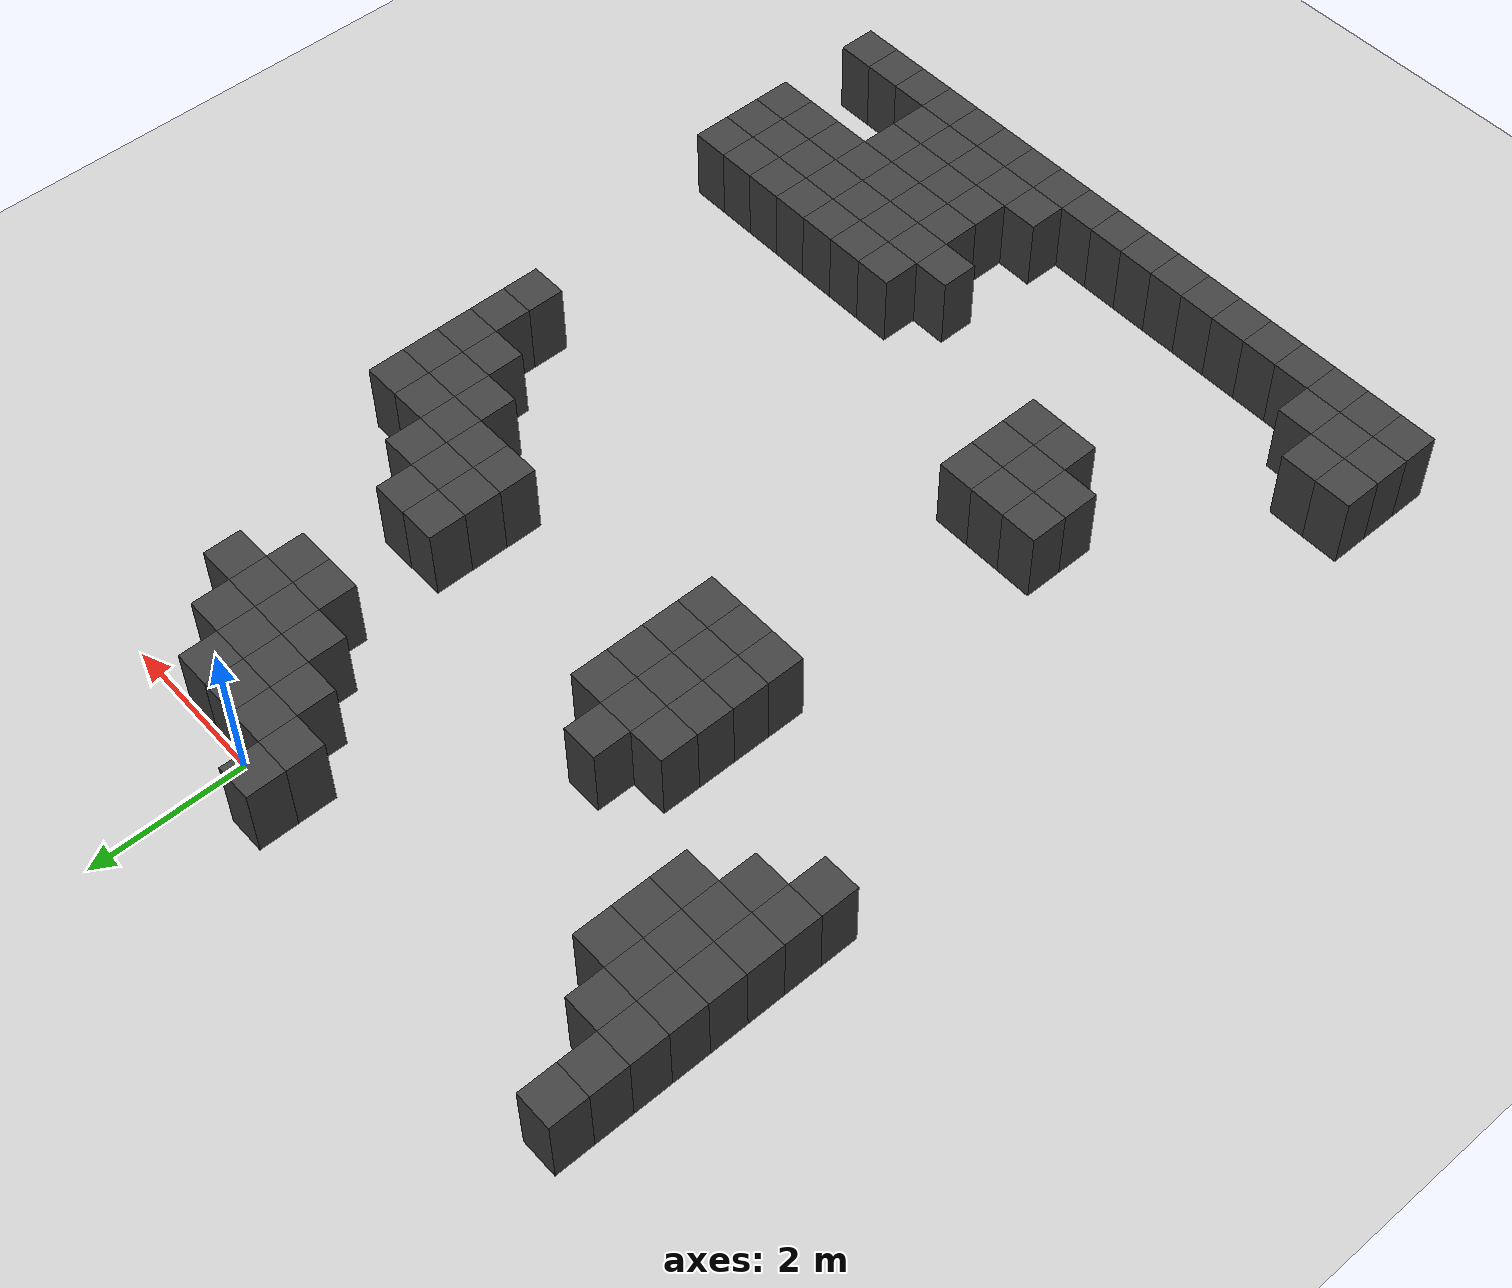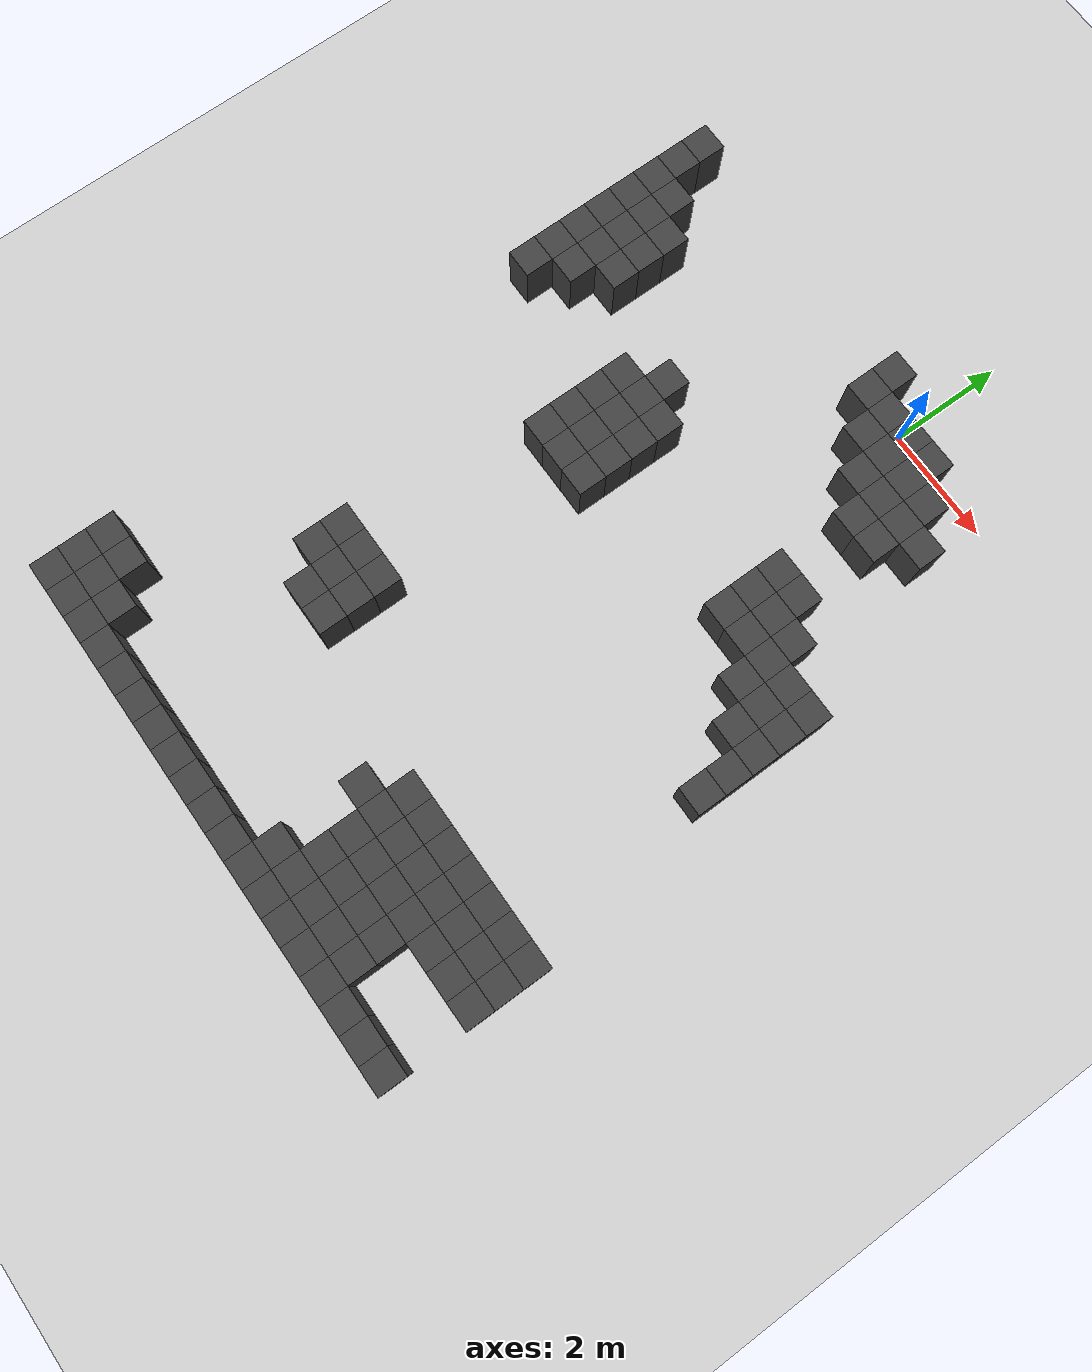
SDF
<sdf version="1.7">
 <world name="map_9082">
  <model name="ground_plane">
   <static>true</static>
   <link name="link">
    <collision name="collision">
     <geometry><plane><normal>0 0 1</normal><size>200 200</size></plane></geometry>
    </collision>
    <visual name="visual">
     <geometry><plane><normal>0 0 1</normal><size>200 200</size></plane></geometry>
     <material><ambient>0.8 0.8 0.8 1</ambient><diffuse>0.8 0.8 0.8 1</diffuse></material>
    </visual>
   </link>
  </model>
  <model name="maze_environment">
   <static>true</static>
   <link name="wall_436">
    <pose>-5.750 0.250 0.500 0 0 0</pose>
    <collision name="col"><geometry><box><size>0.5 0.5 1.0</size></box></geometry></collision>
    <visual name="vis">
     <geometry><box><size>0.5 0.5 1.0</size></box></geometry>
     <material><ambient>0.15 0.15 0.15 1</ambient><diffuse>0.25 0.25 0.25 1</diffuse></material>
    </visual>
   </link>
   <link name="wall_437">
    <pose>-0.750 0.250 0.500 0 0 0</pose>
    <collision name="col"><geometry><box><size>0.5 0.5 1.0</size></box></geometry></collision>
    <visual name="vis">
     <geometry><box><size>0.5 0.5 1.0</size></box></geometry>
     <material><ambient>0.15 0.15 0.15 1</ambient><diffuse>0.25 0.25 0.25 1</diffuse></material>
    </visual>
   </link>
   <link name="wall_450">
    <pose>-5.750 -0.250 0.500 0 0 0</pose>
    <collision name="col"><geometry><box><size>0.5 0.5 1.0</size></box></geometry></collision>
    <visual name="vis">
     <geometry><box><size>0.5 0.5 1.0</size></box></geometry>
     <material><ambient>0.15 0.15 0.15 1</ambient><diffuse>0.25 0.25 0.25 1</diffuse></material>
    </visual>
   </link>
   <link name="wall_451">
    <pose>-0.750 -0.250 0.500 0 0 0</pose>
    <collision name="col"><geometry><box><size>0.5 0.5 1.0</size></box></geometry></collision>
    <visual name="vis">
     <geometry><box><size>0.5 0.5 1.0</size></box></geometry>
     <material><ambient>0.15 0.15 0.15 1</ambient><diffuse>0.25 0.25 0.25 1</diffuse></material>
    </visual>
   </link>
   <link name="wall_452">
    <pose>-0.250 -0.250 0.500 0 0 0</pose>
    <collision name="col"><geometry><box><size>0.5 0.5 1.0</size></box></geometry></collision>
    <visual name="vis">
     <geometry><box><size>0.5 0.5 1.0</size></box></geometry>
     <material><ambient>0.15 0.15 0.15 1</ambient><diffuse>0.25 0.25 0.25 1</diffuse></material>
    </visual>
   </link>
   <link name="wall_453">
    <pose>0.250 -0.250 0.500 0 0 0</pose>
    <collision name="col"><geometry><box><size>0.5 0.5 1.0</size></box></geometry></collision>
    <visual name="vis">
     <geometry><box><size>0.5 0.5 1.0</size></box></geometry>
     <material><ambient>0.15 0.15 0.15 1</ambient><diffuse>0.25 0.25 0.25 1</diffuse></material>
    </visual>
   </link>
   <link name="wall_454">
    <pose>0.750 -0.250 0.500 0 0 0</pose>
    <collision name="col"><geometry><box><size>0.5 0.5 1.0</size></box></geometry></collision>
    <visual name="vis">
     <geometry><box><size>0.5 0.5 1.0</size></box></geometry>
     <material><ambient>0.15 0.15 0.15 1</ambient><diffuse>0.25 0.25 0.25 1</diffuse></material>
    </visual>
   </link>
   <link name="wall_465">
    <pose>-5.750 -0.750 0.500 0 0 0</pose>
    <collision name="col"><geometry><box><size>0.5 0.5 1.0</size></box></geometry></collision>
    <visual name="vis">
     <geometry><box><size>0.5 0.5 1.0</size></box></geometry>
     <material><ambient>0.15 0.15 0.15 1</ambient><diffuse>0.25 0.25 0.25 1</diffuse></material>
    </visual>
   </link>
   <link name="wall_466">
    <pose>-5.250 -0.750 0.500 0 0 0</pose>
    <collision name="col"><geometry><box><size>0.5 0.5 1.0</size></box></geometry></collision>
    <visual name="vis">
     <geometry><box><size>0.5 0.5 1.0</size></box></geometry>
     <material><ambient>0.15 0.15 0.15 1</ambient><diffuse>0.25 0.25 0.25 1</diffuse></material>
    </visual>
   </link>
   <link name="wall_467">
    <pose>-0.250 -0.750 0.500 0 0 0</pose>
    <collision name="col"><geometry><box><size>0.5 0.5 1.0</size></box></geometry></collision>
    <visual name="vis">
     <geometry><box><size>0.5 0.5 1.0</size></box></geometry>
     <material><ambient>0.15 0.15 0.15 1</ambient><diffuse>0.25 0.25 0.25 1</diffuse></material>
    </visual>
   </link>
   <link name="wall_468">
    <pose>0.250 -0.750 0.500 0 0 0</pose>
    <collision name="col"><geometry><box><size>0.5 0.5 1.0</size></box></geometry></collision>
    <visual name="vis">
     <geometry><box><size>0.5 0.5 1.0</size></box></geometry>
     <material><ambient>0.15 0.15 0.15 1</ambient><diffuse>0.25 0.25 0.25 1</diffuse></material>
    </visual>
   </link>
   <link name="wall_469">
    <pose>0.750 -0.750 0.500 0 0 0</pose>
    <collision name="col"><geometry><box><size>0.5 0.5 1.0</size></box></geometry></collision>
    <visual name="vis">
     <geometry><box><size>0.5 0.5 1.0</size></box></geometry>
     <material><ambient>0.15 0.15 0.15 1</ambient><diffuse>0.25 0.25 0.25 1</diffuse></material>
    </visual>
   </link>
   <link name="wall_470">
    <pose>1.250 -0.750 0.500 0 0 0</pose>
    <collision name="col"><geometry><box><size>0.5 0.5 1.0</size></box></geometry></collision>
    <visual name="vis">
     <geometry><box><size>0.5 0.5 1.0</size></box></geometry>
     <material><ambient>0.15 0.15 0.15 1</ambient><diffuse>0.25 0.25 0.25 1</diffuse></material>
    </visual>
   </link>
   <link name="wall_482">
    <pose>-5.750 -1.250 0.500 0 0 0</pose>
    <collision name="col"><geometry><box><size>0.5 0.5 1.0</size></box></geometry></collision>
    <visual name="vis">
     <geometry><box><size>0.5 0.5 1.0</size></box></geometry>
     <material><ambient>0.15 0.15 0.15 1</ambient><diffuse>0.25 0.25 0.25 1</diffuse></material>
    </visual>
   </link>
   <link name="wall_483">
    <pose>-5.250 -1.250 0.500 0 0 0</pose>
    <collision name="col"><geometry><box><size>0.5 0.5 1.0</size></box></geometry></collision>
    <visual name="vis">
     <geometry><box><size>0.5 0.5 1.0</size></box></geometry>
     <material><ambient>0.15 0.15 0.15 1</ambient><diffuse>0.25 0.25 0.25 1</diffuse></material>
    </visual>
   </link>
   <link name="wall_484">
    <pose>-4.750 -1.250 0.500 0 0 0</pose>
    <collision name="col"><geometry><box><size>0.5 0.5 1.0</size></box></geometry></collision>
    <visual name="vis">
     <geometry><box><size>0.5 0.5 1.0</size></box></geometry>
     <material><ambient>0.15 0.15 0.15 1</ambient><diffuse>0.25 0.25 0.25 1</diffuse></material>
    </visual>
   </link>
   <link name="wall_485">
    <pose>0.250 -1.250 0.500 0 0 0</pose>
    <collision name="col"><geometry><box><size>0.5 0.5 1.0</size></box></geometry></collision>
    <visual name="vis">
     <geometry><box><size>0.5 0.5 1.0</size></box></geometry>
     <material><ambient>0.15 0.15 0.15 1</ambient><diffuse>0.25 0.25 0.25 1</diffuse></material>
    </visual>
   </link>
   <link name="wall_486">
    <pose>0.750 -1.250 0.500 0 0 0</pose>
    <collision name="col"><geometry><box><size>0.5 0.5 1.0</size></box></geometry></collision>
    <visual name="vis">
     <geometry><box><size>0.5 0.5 1.0</size></box></geometry>
     <material><ambient>0.15 0.15 0.15 1</ambient><diffuse>0.25 0.25 0.25 1</diffuse></material>
    </visual>
   </link>
   <link name="wall_487">
    <pose>1.250 -1.250 0.500 0 0 0</pose>
    <collision name="col"><geometry><box><size>0.5 0.5 1.0</size></box></geometry></collision>
    <visual name="vis">
     <geometry><box><size>0.5 0.5 1.0</size></box></geometry>
     <material><ambient>0.15 0.15 0.15 1</ambient><diffuse>0.25 0.25 0.25 1</diffuse></material>
    </visual>
   </link>
   <link name="wall_488">
    <pose>1.750 -1.250 0.500 0 0 0</pose>
    <collision name="col"><geometry><box><size>0.5 0.5 1.0</size></box></geometry></collision>
    <visual name="vis">
     <geometry><box><size>0.5 0.5 1.0</size></box></geometry>
     <material><ambient>0.15 0.15 0.15 1</ambient><diffuse>0.25 0.25 0.25 1</diffuse></material>
    </visual>
   </link>
   <link name="wall_500">
    <pose>-5.750 -1.750 0.500 0 0 0</pose>
    <collision name="col"><geometry><box><size>0.5 0.5 1.0</size></box></geometry></collision>
    <visual name="vis">
     <geometry><box><size>0.5 0.5 1.0</size></box></geometry>
     <material><ambient>0.15 0.15 0.15 1</ambient><diffuse>0.25 0.25 0.25 1</diffuse></material>
    </visual>
   </link>
   <link name="wall_501">
    <pose>-5.250 -1.750 0.500 0 0 0</pose>
    <collision name="col"><geometry><box><size>0.5 0.5 1.0</size></box></geometry></collision>
    <visual name="vis">
     <geometry><box><size>0.5 0.5 1.0</size></box></geometry>
     <material><ambient>0.15 0.15 0.15 1</ambient><diffuse>0.25 0.25 0.25 1</diffuse></material>
    </visual>
   </link>
   <link name="wall_502">
    <pose>-4.750 -1.750 0.500 0 0 0</pose>
    <collision name="col"><geometry><box><size>0.5 0.5 1.0</size></box></geometry></collision>
    <visual name="vis">
     <geometry><box><size>0.5 0.5 1.0</size></box></geometry>
     <material><ambient>0.15 0.15 0.15 1</ambient><diffuse>0.25 0.25 0.25 1</diffuse></material>
    </visual>
   </link>
   <link name="wall_503">
    <pose>0.750 -1.750 0.500 0 0 0</pose>
    <collision name="col"><geometry><box><size>0.5 0.5 1.0</size></box></geometry></collision>
    <visual name="vis">
     <geometry><box><size>0.5 0.5 1.0</size></box></geometry>
     <material><ambient>0.15 0.15 0.15 1</ambient><diffuse>0.25 0.25 0.25 1</diffuse></material>
    </visual>
   </link>
   <link name="wall_504">
    <pose>1.250 -1.750 0.500 0 0 0</pose>
    <collision name="col"><geometry><box><size>0.5 0.5 1.0</size></box></geometry></collision>
    <visual name="vis">
     <geometry><box><size>0.5 0.5 1.0</size></box></geometry>
     <material><ambient>0.15 0.15 0.15 1</ambient><diffuse>0.25 0.25 0.25 1</diffuse></material>
    </visual>
   </link>
   <link name="wall_519">
    <pose>-5.750 -2.250 0.500 0 0 0</pose>
    <collision name="col"><geometry><box><size>0.5 0.5 1.0</size></box></geometry></collision>
    <visual name="vis">
     <geometry><box><size>0.5 0.5 1.0</size></box></geometry>
     <material><ambient>0.15 0.15 0.15 1</ambient><diffuse>0.25 0.25 0.25 1</diffuse></material>
    </visual>
   </link>
   <link name="wall_520">
    <pose>-5.250 -2.250 0.500 0 0 0</pose>
    <collision name="col"><geometry><box><size>0.5 0.5 1.0</size></box></geometry></collision>
    <visual name="vis">
     <geometry><box><size>0.5 0.5 1.0</size></box></geometry>
     <material><ambient>0.15 0.15 0.15 1</ambient><diffuse>0.25 0.25 0.25 1</diffuse></material>
    </visual>
   </link>
   <link name="wall_521">
    <pose>-4.750 -2.250 0.500 0 0 0</pose>
    <collision name="col"><geometry><box><size>0.5 0.5 1.0</size></box></geometry></collision>
    <visual name="vis">
     <geometry><box><size>0.5 0.5 1.0</size></box></geometry>
     <material><ambient>0.15 0.15 0.15 1</ambient><diffuse>0.25 0.25 0.25 1</diffuse></material>
    </visual>
   </link>
   <link name="wall_538">
    <pose>-5.750 -2.750 0.500 0 0 0</pose>
    <collision name="col"><geometry><box><size>0.5 0.5 1.0</size></box></geometry></collision>
    <visual name="vis">
     <geometry><box><size>0.5 0.5 1.0</size></box></geometry>
     <material><ambient>0.15 0.15 0.15 1</ambient><diffuse>0.25 0.25 0.25 1</diffuse></material>
    </visual>
   </link>
   <link name="wall_539">
    <pose>-5.250 -2.750 0.500 0 0 0</pose>
    <collision name="col"><geometry><box><size>0.5 0.5 1.0</size></box></geometry></collision>
    <visual name="vis">
     <geometry><box><size>0.5 0.5 1.0</size></box></geometry>
     <material><ambient>0.15 0.15 0.15 1</ambient><diffuse>0.25 0.25 0.25 1</diffuse></material>
    </visual>
   </link>
   <link name="wall_540">
    <pose>-2.750 -2.750 0.500 0 0 0</pose>
    <collision name="col"><geometry><box><size>0.5 0.5 1.0</size></box></geometry></collision>
    <visual name="vis">
     <geometry><box><size>0.5 0.5 1.0</size></box></geometry>
     <material><ambient>0.15 0.15 0.15 1</ambient><diffuse>0.25 0.25 0.25 1</diffuse></material>
    </visual>
   </link>
   <link name="wall_557">
    <pose>-5.750 -3.250 0.500 0 0 0</pose>
    <collision name="col"><geometry><box><size>0.5 0.5 1.0</size></box></geometry></collision>
    <visual name="vis">
     <geometry><box><size>0.5 0.5 1.0</size></box></geometry>
     <material><ambient>0.15 0.15 0.15 1</ambient><diffuse>0.25 0.25 0.25 1</diffuse></material>
    </visual>
   </link>
   <link name="wall_558">
    <pose>-3.250 -3.250 0.500 0 0 0</pose>
    <collision name="col"><geometry><box><size>0.5 0.5 1.0</size></box></geometry></collision>
    <visual name="vis">
     <geometry><box><size>0.5 0.5 1.0</size></box></geometry>
     <material><ambient>0.15 0.15 0.15 1</ambient><diffuse>0.25 0.25 0.25 1</diffuse></material>
    </visual>
   </link>
   <link name="wall_559">
    <pose>-2.750 -3.250 0.500 0 0 0</pose>
    <collision name="col"><geometry><box><size>0.5 0.5 1.0</size></box></geometry></collision>
    <visual name="vis">
     <geometry><box><size>0.5 0.5 1.0</size></box></geometry>
     <material><ambient>0.15 0.15 0.15 1</ambient><diffuse>0.25 0.25 0.25 1</diffuse></material>
    </visual>
   </link>
   <link name="wall_560">
    <pose>-2.250 -3.250 0.500 0 0 0</pose>
    <collision name="col"><geometry><box><size>0.5 0.5 1.0</size></box></geometry></collision>
    <visual name="vis">
     <geometry><box><size>0.5 0.5 1.0</size></box></geometry>
     <material><ambient>0.15 0.15 0.15 1</ambient><diffuse>0.25 0.25 0.25 1</diffuse></material>
    </visual>
   </link>
   <link name="wall_561">
    <pose>0.750 -3.250 0.500 0 0 0</pose>
    <collision name="col"><geometry><box><size>0.5 0.5 1.0</size></box></geometry></collision>
    <visual name="vis">
     <geometry><box><size>0.5 0.5 1.0</size></box></geometry>
     <material><ambient>0.15 0.15 0.15 1</ambient><diffuse>0.25 0.25 0.25 1</diffuse></material>
    </visual>
   </link>
   <link name="wall_562">
    <pose>1.250 -3.250 0.500 0 0 0</pose>
    <collision name="col"><geometry><box><size>0.5 0.5 1.0</size></box></geometry></collision>
    <visual name="vis">
     <geometry><box><size>0.5 0.5 1.0</size></box></geometry>
     <material><ambient>0.15 0.15 0.15 1</ambient><diffuse>0.25 0.25 0.25 1</diffuse></material>
    </visual>
   </link>
   <link name="wall_575">
    <pose>-3.250 -3.750 0.500 0 0 0</pose>
    <collision name="col"><geometry><box><size>0.5 0.5 1.0</size></box></geometry></collision>
    <visual name="vis">
     <geometry><box><size>0.5 0.5 1.0</size></box></geometry>
     <material><ambient>0.15 0.15 0.15 1</ambient><diffuse>0.25 0.25 0.25 1</diffuse></material>
    </visual>
   </link>
   <link name="wall_576">
    <pose>-2.750 -3.750 0.500 0 0 0</pose>
    <collision name="col"><geometry><box><size>0.5 0.5 1.0</size></box></geometry></collision>
    <visual name="vis">
     <geometry><box><size>0.5 0.5 1.0</size></box></geometry>
     <material><ambient>0.15 0.15 0.15 1</ambient><diffuse>0.25 0.25 0.25 1</diffuse></material>
    </visual>
   </link>
   <link name="wall_577">
    <pose>-2.250 -3.750 0.500 0 0 0</pose>
    <collision name="col"><geometry><box><size>0.5 0.5 1.0</size></box></geometry></collision>
    <visual name="vis">
     <geometry><box><size>0.5 0.5 1.0</size></box></geometry>
     <material><ambient>0.15 0.15 0.15 1</ambient><diffuse>0.25 0.25 0.25 1</diffuse></material>
    </visual>
   </link>
   <link name="wall_578">
    <pose>0.750 -3.750 0.500 0 0 0</pose>
    <collision name="col"><geometry><box><size>0.5 0.5 1.0</size></box></geometry></collision>
    <visual name="vis">
     <geometry><box><size>0.5 0.5 1.0</size></box></geometry>
     <material><ambient>0.15 0.15 0.15 1</ambient><diffuse>0.25 0.25 0.25 1</diffuse></material>
    </visual>
   </link>
   <link name="wall_579">
    <pose>1.250 -3.750 0.500 0 0 0</pose>
    <collision name="col"><geometry><box><size>0.5 0.5 1.0</size></box></geometry></collision>
    <visual name="vis">
     <geometry><box><size>0.5 0.5 1.0</size></box></geometry>
     <material><ambient>0.15 0.15 0.15 1</ambient><diffuse>0.25 0.25 0.25 1</diffuse></material>
    </visual>
   </link>
   <link name="wall_580">
    <pose>1.750 -3.750 0.500 0 0 0</pose>
    <collision name="col"><geometry><box><size>0.5 0.5 1.0</size></box></geometry></collision>
    <visual name="vis">
     <geometry><box><size>0.5 0.5 1.0</size></box></geometry>
     <material><ambient>0.15 0.15 0.15 1</ambient><diffuse>0.25 0.25 0.25 1</diffuse></material>
    </visual>
   </link>
   <link name="wall_591">
    <pose>-3.250 -4.250 0.500 0 0 0</pose>
    <collision name="col"><geometry><box><size>0.5 0.5 1.0</size></box></geometry></collision>
    <visual name="vis">
     <geometry><box><size>0.5 0.5 1.0</size></box></geometry>
     <material><ambient>0.15 0.15 0.15 1</ambient><diffuse>0.25 0.25 0.25 1</diffuse></material>
    </visual>
   </link>
   <link name="wall_592">
    <pose>-2.750 -4.250 0.500 0 0 0</pose>
    <collision name="col"><geometry><box><size>0.5 0.5 1.0</size></box></geometry></collision>
    <visual name="vis">
     <geometry><box><size>0.5 0.5 1.0</size></box></geometry>
     <material><ambient>0.15 0.15 0.15 1</ambient><diffuse>0.25 0.25 0.25 1</diffuse></material>
    </visual>
   </link>
   <link name="wall_593">
    <pose>-2.250 -4.250 0.500 0 0 0</pose>
    <collision name="col"><geometry><box><size>0.5 0.5 1.0</size></box></geometry></collision>
    <visual name="vis">
     <geometry><box><size>0.5 0.5 1.0</size></box></geometry>
     <material><ambient>0.15 0.15 0.15 1</ambient><diffuse>0.25 0.25 0.25 1</diffuse></material>
    </visual>
   </link>
   <link name="wall_594">
    <pose>0.750 -4.250 0.500 0 0 0</pose>
    <collision name="col"><geometry><box><size>0.5 0.5 1.0</size></box></geometry></collision>
    <visual name="vis">
     <geometry><box><size>0.5 0.5 1.0</size></box></geometry>
     <material><ambient>0.15 0.15 0.15 1</ambient><diffuse>0.25 0.25 0.25 1</diffuse></material>
    </visual>
   </link>
   <link name="wall_595">
    <pose>1.250 -4.250 0.500 0 0 0</pose>
    <collision name="col"><geometry><box><size>0.5 0.5 1.0</size></box></geometry></collision>
    <visual name="vis">
     <geometry><box><size>0.5 0.5 1.0</size></box></geometry>
     <material><ambient>0.15 0.15 0.15 1</ambient><diffuse>0.25 0.25 0.25 1</diffuse></material>
    </visual>
   </link>
   <link name="wall_596">
    <pose>1.750 -4.250 0.500 0 0 0</pose>
    <collision name="col"><geometry><box><size>0.5 0.5 1.0</size></box></geometry></collision>
    <visual name="vis">
     <geometry><box><size>0.5 0.5 1.0</size></box></geometry>
     <material><ambient>0.15 0.15 0.15 1</ambient><diffuse>0.25 0.25 0.25 1</diffuse></material>
    </visual>
   </link>
   <link name="wall_597">
    <pose>2.250 -4.250 0.500 0 0 0</pose>
    <collision name="col"><geometry><box><size>0.5 0.5 1.0</size></box></geometry></collision>
    <visual name="vis">
     <geometry><box><size>0.5 0.5 1.0</size></box></geometry>
     <material><ambient>0.15 0.15 0.15 1</ambient><diffuse>0.25 0.25 0.25 1</diffuse></material>
    </visual>
   </link>
   <link name="wall_598">
    <pose>2.750 -4.250 0.500 0 0 0</pose>
    <collision name="col"><geometry><box><size>0.5 0.5 1.0</size></box></geometry></collision>
    <visual name="vis">
     <geometry><box><size>0.5 0.5 1.0</size></box></geometry>
     <material><ambient>0.15 0.15 0.15 1</ambient><diffuse>0.25 0.25 0.25 1</diffuse></material>
    </visual>
   </link>
   <link name="wall_611">
    <pose>-3.250 -4.750 0.500 0 0 0</pose>
    <collision name="col"><geometry><box><size>0.5 0.5 1.0</size></box></geometry></collision>
    <visual name="vis">
     <geometry><box><size>0.5 0.5 1.0</size></box></geometry>
     <material><ambient>0.15 0.15 0.15 1</ambient><diffuse>0.25 0.25 0.25 1</diffuse></material>
    </visual>
   </link>
   <link name="wall_612">
    <pose>-2.750 -4.750 0.500 0 0 0</pose>
    <collision name="col"><geometry><box><size>0.5 0.5 1.0</size></box></geometry></collision>
    <visual name="vis">
     <geometry><box><size>0.5 0.5 1.0</size></box></geometry>
     <material><ambient>0.15 0.15 0.15 1</ambient><diffuse>0.25 0.25 0.25 1</diffuse></material>
    </visual>
   </link>
   <link name="wall_613">
    <pose>-2.250 -4.750 0.500 0 0 0</pose>
    <collision name="col"><geometry><box><size>0.5 0.5 1.0</size></box></geometry></collision>
    <visual name="vis">
     <geometry><box><size>0.5 0.5 1.0</size></box></geometry>
     <material><ambient>0.15 0.15 0.15 1</ambient><diffuse>0.25 0.25 0.25 1</diffuse></material>
    </visual>
   </link>
   <link name="wall_614">
    <pose>1.750 -4.750 0.500 0 0 0</pose>
    <collision name="col"><geometry><box><size>0.5 0.5 1.0</size></box></geometry></collision>
    <visual name="vis">
     <geometry><box><size>0.5 0.5 1.0</size></box></geometry>
     <material><ambient>0.15 0.15 0.15 1</ambient><diffuse>0.25 0.25 0.25 1</diffuse></material>
    </visual>
   </link>
   <link name="wall_615">
    <pose>2.250 -4.750 0.500 0 0 0</pose>
    <collision name="col"><geometry><box><size>0.5 0.5 1.0</size></box></geometry></collision>
    <visual name="vis">
     <geometry><box><size>0.5 0.5 1.0</size></box></geometry>
     <material><ambient>0.15 0.15 0.15 1</ambient><diffuse>0.25 0.25 0.25 1</diffuse></material>
    </visual>
   </link>
   <link name="wall_616">
    <pose>2.750 -4.750 0.500 0 0 0</pose>
    <collision name="col"><geometry><box><size>0.5 0.5 1.0</size></box></geometry></collision>
    <visual name="vis">
     <geometry><box><size>0.5 0.5 1.0</size></box></geometry>
     <material><ambient>0.15 0.15 0.15 1</ambient><diffuse>0.25 0.25 0.25 1</diffuse></material>
    </visual>
   </link>
   <link name="wall_626">
    <pose>2.250 -5.250 0.500 0 0 0</pose>
    <collision name="col"><geometry><box><size>0.5 0.5 1.0</size></box></geometry></collision>
    <visual name="vis">
     <geometry><box><size>0.5 0.5 1.0</size></box></geometry>
     <material><ambient>0.15 0.15 0.15 1</ambient><diffuse>0.25 0.25 0.25 1</diffuse></material>
    </visual>
   </link>
   <link name="wall_627">
    <pose>2.750 -5.250 0.500 0 0 0</pose>
    <collision name="col"><geometry><box><size>0.5 0.5 1.0</size></box></geometry></collision>
    <visual name="vis">
     <geometry><box><size>0.5 0.5 1.0</size></box></geometry>
     <material><ambient>0.15 0.15 0.15 1</ambient><diffuse>0.25 0.25 0.25 1</diffuse></material>
    </visual>
   </link>
   <link name="wall_637">
    <pose>2.750 -5.750 0.500 0 0 0</pose>
    <collision name="col"><geometry><box><size>0.5 0.5 1.0</size></box></geometry></collision>
    <visual name="vis">
     <geometry><box><size>0.5 0.5 1.0</size></box></geometry>
     <material><ambient>0.15 0.15 0.15 1</ambient><diffuse>0.25 0.25 0.25 1</diffuse></material>
    </visual>
   </link>
   <link name="wall_645">
    <pose>2.750 -6.250 0.500 0 0 0</pose>
    <collision name="col"><geometry><box><size>0.5 0.5 1.0</size></box></geometry></collision>
    <visual name="vis">
     <geometry><box><size>0.5 0.5 1.0</size></box></geometry>
     <material><ambient>0.15 0.15 0.15 1</ambient><diffuse>0.25 0.25 0.25 1</diffuse></material>
    </visual>
   </link>
   <link name="wall_698">
    <pose>-3.750 -8.250 0.500 0 0 0</pose>
    <collision name="col"><geometry><box><size>0.5 0.5 1.0</size></box></geometry></collision>
    <visual name="vis">
     <geometry><box><size>0.5 0.5 1.0</size></box></geometry>
     <material><ambient>0.15 0.15 0.15 1</ambient><diffuse>0.25 0.25 0.25 1</diffuse></material>
    </visual>
   </link>
   <link name="wall_699">
    <pose>-3.250 -8.250 0.500 0 0 0</pose>
    <collision name="col"><geometry><box><size>0.5 0.5 1.0</size></box></geometry></collision>
    <visual name="vis">
     <geometry><box><size>0.5 0.5 1.0</size></box></geometry>
     <material><ambient>0.15 0.15 0.15 1</ambient><diffuse>0.25 0.25 0.25 1</diffuse></material>
    </visual>
   </link>
   <link name="wall_700">
    <pose>-2.750 -8.250 0.500 0 0 0</pose>
    <collision name="col"><geometry><box><size>0.5 0.5 1.0</size></box></geometry></collision>
    <visual name="vis">
     <geometry><box><size>0.5 0.5 1.0</size></box></geometry>
     <material><ambient>0.15 0.15 0.15 1</ambient><diffuse>0.25 0.25 0.25 1</diffuse></material>
    </visual>
   </link>
   <link name="wall_713">
    <pose>-3.750 -8.750 0.500 0 0 0</pose>
    <collision name="col"><geometry><box><size>0.5 0.5 1.0</size></box></geometry></collision>
    <visual name="vis">
     <geometry><box><size>0.5 0.5 1.0</size></box></geometry>
     <material><ambient>0.15 0.15 0.15 1</ambient><diffuse>0.25 0.25 0.25 1</diffuse></material>
    </visual>
   </link>
   <link name="wall_714">
    <pose>-3.250 -8.750 0.500 0 0 0</pose>
    <collision name="col"><geometry><box><size>0.5 0.5 1.0</size></box></geometry></collision>
    <visual name="vis">
     <geometry><box><size>0.5 0.5 1.0</size></box></geometry>
     <material><ambient>0.15 0.15 0.15 1</ambient><diffuse>0.25 0.25 0.25 1</diffuse></material>
    </visual>
   </link>
   <link name="wall_715">
    <pose>-2.750 -8.750 0.500 0 0 0</pose>
    <collision name="col"><geometry><box><size>0.5 0.5 1.0</size></box></geometry></collision>
    <visual name="vis">
     <geometry><box><size>0.5 0.5 1.0</size></box></geometry>
     <material><ambient>0.15 0.15 0.15 1</ambient><diffuse>0.25 0.25 0.25 1</diffuse></material>
    </visual>
   </link>
   <link name="wall_724">
    <pose>-3.250 -9.250 0.500 0 0 0</pose>
    <collision name="col"><geometry><box><size>0.5 0.5 1.0</size></box></geometry></collision>
    <visual name="vis">
     <geometry><box><size>0.5 0.5 1.0</size></box></geometry>
     <material><ambient>0.15 0.15 0.15 1</ambient><diffuse>0.25 0.25 0.25 1</diffuse></material>
    </visual>
   </link>
   <link name="wall_725">
    <pose>-2.750 -9.250 0.500 0 0 0</pose>
    <collision name="col"><geometry><box><size>0.5 0.5 1.0</size></box></geometry></collision>
    <visual name="vis">
     <geometry><box><size>0.5 0.5 1.0</size></box></geometry>
     <material><ambient>0.15 0.15 0.15 1</ambient><diffuse>0.25 0.25 0.25 1</diffuse></material>
    </visual>
   </link>
   <link name="wall_735">
    <pose>0.250 -9.750 0.500 0 0 0</pose>
    <collision name="col"><geometry><box><size>0.5 0.5 1.0</size></box></geometry></collision>
    <visual name="vis">
     <geometry><box><size>0.5 0.5 1.0</size></box></geometry>
     <material><ambient>0.15 0.15 0.15 1</ambient><diffuse>0.25 0.25 0.25 1</diffuse></material>
    </visual>
   </link>
   <link name="wall_736">
    <pose>0.750 -9.750 0.500 0 0 0</pose>
    <collision name="col"><geometry><box><size>0.5 0.5 1.0</size></box></geometry></collision>
    <visual name="vis">
     <geometry><box><size>0.5 0.5 1.0</size></box></geometry>
     <material><ambient>0.15 0.15 0.15 1</ambient><diffuse>0.25 0.25 0.25 1</diffuse></material>
    </visual>
   </link>
   <link name="wall_737">
    <pose>1.250 -9.750 0.500 0 0 0</pose>
    <collision name="col"><geometry><box><size>0.5 0.5 1.0</size></box></geometry></collision>
    <visual name="vis">
     <geometry><box><size>0.5 0.5 1.0</size></box></geometry>
     <material><ambient>0.15 0.15 0.15 1</ambient><diffuse>0.25 0.25 0.25 1</diffuse></material>
    </visual>
   </link>
   <link name="wall_738">
    <pose>1.750 -9.750 0.500 0 0 0</pose>
    <collision name="col"><geometry><box><size>0.5 0.5 1.0</size></box></geometry></collision>
    <visual name="vis">
     <geometry><box><size>0.5 0.5 1.0</size></box></geometry>
     <material><ambient>0.15 0.15 0.15 1</ambient><diffuse>0.25 0.25 0.25 1</diffuse></material>
    </visual>
   </link>
   <link name="wall_739">
    <pose>2.250 -9.750 0.500 0 0 0</pose>
    <collision name="col"><geometry><box><size>0.5 0.5 1.0</size></box></geometry></collision>
    <visual name="vis">
     <geometry><box><size>0.5 0.5 1.0</size></box></geometry>
     <material><ambient>0.15 0.15 0.15 1</ambient><diffuse>0.25 0.25 0.25 1</diffuse></material>
    </visual>
   </link>
   <link name="wall_740">
    <pose>2.750 -9.750 0.500 0 0 0</pose>
    <collision name="col"><geometry><box><size>0.5 0.5 1.0</size></box></geometry></collision>
    <visual name="vis">
     <geometry><box><size>0.5 0.5 1.0</size></box></geometry>
     <material><ambient>0.15 0.15 0.15 1</ambient><diffuse>0.25 0.25 0.25 1</diffuse></material>
    </visual>
   </link>
   <link name="wall_741">
    <pose>3.250 -9.750 0.500 0 0 0</pose>
    <collision name="col"><geometry><box><size>0.5 0.5 1.0</size></box></geometry></collision>
    <visual name="vis">
     <geometry><box><size>0.5 0.5 1.0</size></box></geometry>
     <material><ambient>0.15 0.15 0.15 1</ambient><diffuse>0.25 0.25 0.25 1</diffuse></material>
    </visual>
   </link>
   <link name="wall_753">
    <pose>-0.250 -10.250 0.500 0 0 0</pose>
    <collision name="col"><geometry><box><size>0.5 0.5 1.0</size></box></geometry></collision>
    <visual name="vis">
     <geometry><box><size>0.5 0.5 1.0</size></box></geometry>
     <material><ambient>0.15 0.15 0.15 1</ambient><diffuse>0.25 0.25 0.25 1</diffuse></material>
    </visual>
   </link>
   <link name="wall_754">
    <pose>0.250 -10.250 0.500 0 0 0</pose>
    <collision name="col"><geometry><box><size>0.5 0.5 1.0</size></box></geometry></collision>
    <visual name="vis">
     <geometry><box><size>0.5 0.5 1.0</size></box></geometry>
     <material><ambient>0.15 0.15 0.15 1</ambient><diffuse>0.25 0.25 0.25 1</diffuse></material>
    </visual>
   </link>
   <link name="wall_755">
    <pose>0.750 -10.250 0.500 0 0 0</pose>
    <collision name="col"><geometry><box><size>0.5 0.5 1.0</size></box></geometry></collision>
    <visual name="vis">
     <geometry><box><size>0.5 0.5 1.0</size></box></geometry>
     <material><ambient>0.15 0.15 0.15 1</ambient><diffuse>0.25 0.25 0.25 1</diffuse></material>
    </visual>
   </link>
   <link name="wall_756">
    <pose>1.250 -10.250 0.500 0 0 0</pose>
    <collision name="col"><geometry><box><size>0.5 0.5 1.0</size></box></geometry></collision>
    <visual name="vis">
     <geometry><box><size>0.5 0.5 1.0</size></box></geometry>
     <material><ambient>0.15 0.15 0.15 1</ambient><diffuse>0.25 0.25 0.25 1</diffuse></material>
    </visual>
   </link>
   <link name="wall_757">
    <pose>1.750 -10.250 0.500 0 0 0</pose>
    <collision name="col"><geometry><box><size>0.5 0.5 1.0</size></box></geometry></collision>
    <visual name="vis">
     <geometry><box><size>0.5 0.5 1.0</size></box></geometry>
     <material><ambient>0.15 0.15 0.15 1</ambient><diffuse>0.25 0.25 0.25 1</diffuse></material>
    </visual>
   </link>
   <link name="wall_758">
    <pose>2.250 -10.250 0.500 0 0 0</pose>
    <collision name="col"><geometry><box><size>0.5 0.5 1.0</size></box></geometry></collision>
    <visual name="vis">
     <geometry><box><size>0.5 0.5 1.0</size></box></geometry>
     <material><ambient>0.15 0.15 0.15 1</ambient><diffuse>0.25 0.25 0.25 1</diffuse></material>
    </visual>
   </link>
   <link name="wall_759">
    <pose>2.750 -10.250 0.500 0 0 0</pose>
    <collision name="col"><geometry><box><size>0.5 0.5 1.0</size></box></geometry></collision>
    <visual name="vis">
     <geometry><box><size>0.5 0.5 1.0</size></box></geometry>
     <material><ambient>0.15 0.15 0.15 1</ambient><diffuse>0.25 0.25 0.25 1</diffuse></material>
    </visual>
   </link>
   <link name="wall_760">
    <pose>3.250 -10.250 0.500 0 0 0</pose>
    <collision name="col"><geometry><box><size>0.5 0.5 1.0</size></box></geometry></collision>
    <visual name="vis">
     <geometry><box><size>0.5 0.5 1.0</size></box></geometry>
     <material><ambient>0.15 0.15 0.15 1</ambient><diffuse>0.25 0.25 0.25 1</diffuse></material>
    </visual>
   </link>
   <link name="wall_771">
    <pose>0.250 -10.750 0.500 0 0 0</pose>
    <collision name="col"><geometry><box><size>0.5 0.5 1.0</size></box></geometry></collision>
    <visual name="vis">
     <geometry><box><size>0.5 0.5 1.0</size></box></geometry>
     <material><ambient>0.15 0.15 0.15 1</ambient><diffuse>0.25 0.25 0.25 1</diffuse></material>
    </visual>
   </link>
   <link name="wall_772">
    <pose>0.750 -10.750 0.500 0 0 0</pose>
    <collision name="col"><geometry><box><size>0.5 0.5 1.0</size></box></geometry></collision>
    <visual name="vis">
     <geometry><box><size>0.5 0.5 1.0</size></box></geometry>
     <material><ambient>0.15 0.15 0.15 1</ambient><diffuse>0.25 0.25 0.25 1</diffuse></material>
    </visual>
   </link>
   <link name="wall_773">
    <pose>1.250 -10.750 0.500 0 0 0</pose>
    <collision name="col"><geometry><box><size>0.5 0.5 1.0</size></box></geometry></collision>
    <visual name="vis">
     <geometry><box><size>0.5 0.5 1.0</size></box></geometry>
     <material><ambient>0.15 0.15 0.15 1</ambient><diffuse>0.25 0.25 0.25 1</diffuse></material>
    </visual>
   </link>
   <link name="wall_774">
    <pose>1.750 -10.750 0.500 0 0 0</pose>
    <collision name="col"><geometry><box><size>0.5 0.5 1.0</size></box></geometry></collision>
    <visual name="vis">
     <geometry><box><size>0.5 0.5 1.0</size></box></geometry>
     <material><ambient>0.15 0.15 0.15 1</ambient><diffuse>0.25 0.25 0.25 1</diffuse></material>
    </visual>
   </link>
   <link name="wall_775">
    <pose>2.250 -10.750 0.500 0 0 0</pose>
    <collision name="col"><geometry><box><size>0.5 0.5 1.0</size></box></geometry></collision>
    <visual name="vis">
     <geometry><box><size>0.5 0.5 1.0</size></box></geometry>
     <material><ambient>0.15 0.15 0.15 1</ambient><diffuse>0.25 0.25 0.25 1</diffuse></material>
    </visual>
   </link>
   <link name="wall_776">
    <pose>2.750 -10.750 0.500 0 0 0</pose>
    <collision name="col"><geometry><box><size>0.5 0.5 1.0</size></box></geometry></collision>
    <visual name="vis">
     <geometry><box><size>0.5 0.5 1.0</size></box></geometry>
     <material><ambient>0.15 0.15 0.15 1</ambient><diffuse>0.25 0.25 0.25 1</diffuse></material>
    </visual>
   </link>
   <link name="wall_777">
    <pose>3.250 -10.750 0.500 0 0 0</pose>
    <collision name="col"><geometry><box><size>0.5 0.5 1.0</size></box></geometry></collision>
    <visual name="vis">
     <geometry><box><size>0.5 0.5 1.0</size></box></geometry>
     <material><ambient>0.15 0.15 0.15 1</ambient><diffuse>0.25 0.25 0.25 1</diffuse></material>
    </visual>
   </link>
   <link name="wall_788">
    <pose>-5.750 -11.250 0.500 0 0 0</pose>
    <collision name="col"><geometry><box><size>0.5 0.5 1.0</size></box></geometry></collision>
    <visual name="vis">
     <geometry><box><size>0.5 0.5 1.0</size></box></geometry>
     <material><ambient>0.15 0.15 0.15 1</ambient><diffuse>0.25 0.25 0.25 1</diffuse></material>
    </visual>
   </link>
   <link name="wall_789">
    <pose>-5.250 -11.250 0.500 0 0 0</pose>
    <collision name="col"><geometry><box><size>0.5 0.5 1.0</size></box></geometry></collision>
    <visual name="vis">
     <geometry><box><size>0.5 0.5 1.0</size></box></geometry>
     <material><ambient>0.15 0.15 0.15 1</ambient><diffuse>0.25 0.25 0.25 1</diffuse></material>
    </visual>
   </link>
   <link name="wall_790">
    <pose>0.250 -11.250 0.500 0 0 0</pose>
    <collision name="col"><geometry><box><size>0.5 0.5 1.0</size></box></geometry></collision>
    <visual name="vis">
     <geometry><box><size>0.5 0.5 1.0</size></box></geometry>
     <material><ambient>0.15 0.15 0.15 1</ambient><diffuse>0.25 0.25 0.25 1</diffuse></material>
    </visual>
   </link>
   <link name="wall_791">
    <pose>0.750 -11.250 0.500 0 0 0</pose>
    <collision name="col"><geometry><box><size>0.5 0.5 1.0</size></box></geometry></collision>
    <visual name="vis">
     <geometry><box><size>0.5 0.5 1.0</size></box></geometry>
     <material><ambient>0.15 0.15 0.15 1</ambient><diffuse>0.25 0.25 0.25 1</diffuse></material>
    </visual>
   </link>
   <link name="wall_792">
    <pose>1.250 -11.250 0.500 0 0 0</pose>
    <collision name="col"><geometry><box><size>0.5 0.5 1.0</size></box></geometry></collision>
    <visual name="vis">
     <geometry><box><size>0.5 0.5 1.0</size></box></geometry>
     <material><ambient>0.15 0.15 0.15 1</ambient><diffuse>0.25 0.25 0.25 1</diffuse></material>
    </visual>
   </link>
   <link name="wall_793">
    <pose>1.750 -11.250 0.500 0 0 0</pose>
    <collision name="col"><geometry><box><size>0.5 0.5 1.0</size></box></geometry></collision>
    <visual name="vis">
     <geometry><box><size>0.5 0.5 1.0</size></box></geometry>
     <material><ambient>0.15 0.15 0.15 1</ambient><diffuse>0.25 0.25 0.25 1</diffuse></material>
    </visual>
   </link>
   <link name="wall_807">
    <pose>-5.750 -11.750 0.500 0 0 0</pose>
    <collision name="col"><geometry><box><size>0.5 0.5 1.0</size></box></geometry></collision>
    <visual name="vis">
     <geometry><box><size>0.5 0.5 1.0</size></box></geometry>
     <material><ambient>0.15 0.15 0.15 1</ambient><diffuse>0.25 0.25 0.25 1</diffuse></material>
    </visual>
   </link>
   <link name="wall_808">
    <pose>-5.250 -11.750 0.500 0 0 0</pose>
    <collision name="col"><geometry><box><size>0.5 0.5 1.0</size></box></geometry></collision>
    <visual name="vis">
     <geometry><box><size>0.5 0.5 1.0</size></box></geometry>
     <material><ambient>0.15 0.15 0.15 1</ambient><diffuse>0.25 0.25 0.25 1</diffuse></material>
    </visual>
   </link>
   <link name="wall_809">
    <pose>-4.750 -11.750 0.500 0 0 0</pose>
    <collision name="col"><geometry><box><size>0.5 0.5 1.0</size></box></geometry></collision>
    <visual name="vis">
     <geometry><box><size>0.5 0.5 1.0</size></box></geometry>
     <material><ambient>0.15 0.15 0.15 1</ambient><diffuse>0.25 0.25 0.25 1</diffuse></material>
    </visual>
   </link>
   <link name="wall_810">
    <pose>-0.250 -11.750 0.500 0 0 0</pose>
    <collision name="col"><geometry><box><size>0.5 0.5 1.0</size></box></geometry></collision>
    <visual name="vis">
     <geometry><box><size>0.5 0.5 1.0</size></box></geometry>
     <material><ambient>0.15 0.15 0.15 1</ambient><diffuse>0.25 0.25 0.25 1</diffuse></material>
    </visual>
   </link>
   <link name="wall_811">
    <pose>0.250 -11.750 0.500 0 0 0</pose>
    <collision name="col"><geometry><box><size>0.5 0.5 1.0</size></box></geometry></collision>
    <visual name="vis">
     <geometry><box><size>0.5 0.5 1.0</size></box></geometry>
     <material><ambient>0.15 0.15 0.15 1</ambient><diffuse>0.25 0.25 0.25 1</diffuse></material>
    </visual>
   </link>
   <link name="wall_812">
    <pose>0.750 -11.750 0.500 0 0 0</pose>
    <collision name="col"><geometry><box><size>0.5 0.5 1.0</size></box></geometry></collision>
    <visual name="vis">
     <geometry><box><size>0.5 0.5 1.0</size></box></geometry>
     <material><ambient>0.15 0.15 0.15 1</ambient><diffuse>0.25 0.25 0.25 1</diffuse></material>
    </visual>
   </link>
   <link name="wall_813">
    <pose>1.250 -11.750 0.500 0 0 0</pose>
    <collision name="col"><geometry><box><size>0.5 0.5 1.0</size></box></geometry></collision>
    <visual name="vis">
     <geometry><box><size>0.5 0.5 1.0</size></box></geometry>
     <material><ambient>0.15 0.15 0.15 1</ambient><diffuse>0.25 0.25 0.25 1</diffuse></material>
    </visual>
   </link>
   <link name="wall_814">
    <pose>1.750 -11.750 0.500 0 0 0</pose>
    <collision name="col"><geometry><box><size>0.5 0.5 1.0</size></box></geometry></collision>
    <visual name="vis">
     <geometry><box><size>0.5 0.5 1.0</size></box></geometry>
     <material><ambient>0.15 0.15 0.15 1</ambient><diffuse>0.25 0.25 0.25 1</diffuse></material>
    </visual>
   </link>
   <link name="wall_834">
    <pose>-5.750 -12.250 0.500 0 0 0</pose>
    <collision name="col"><geometry><box><size>0.5 0.5 1.0</size></box></geometry></collision>
    <visual name="vis">
     <geometry><box><size>0.5 0.5 1.0</size></box></geometry>
     <material><ambient>0.15 0.15 0.15 1</ambient><diffuse>0.25 0.25 0.25 1</diffuse></material>
    </visual>
   </link>
   <link name="wall_835">
    <pose>-5.250 -12.250 0.500 0 0 0</pose>
    <collision name="col"><geometry><box><size>0.5 0.5 1.0</size></box></geometry></collision>
    <visual name="vis">
     <geometry><box><size>0.5 0.5 1.0</size></box></geometry>
     <material><ambient>0.15 0.15 0.15 1</ambient><diffuse>0.25 0.25 0.25 1</diffuse></material>
    </visual>
   </link>
   <link name="wall_836">
    <pose>-4.750 -12.250 0.500 0 0 0</pose>
    <collision name="col"><geometry><box><size>0.5 0.5 1.0</size></box></geometry></collision>
    <visual name="vis">
     <geometry><box><size>0.5 0.5 1.0</size></box></geometry>
     <material><ambient>0.15 0.15 0.15 1</ambient><diffuse>0.25 0.25 0.25 1</diffuse></material>
    </visual>
   </link>
   <link name="wall_837">
    <pose>-4.250 -12.250 0.500 0 0 0</pose>
    <collision name="col"><geometry><box><size>0.5 0.5 1.0</size></box></geometry></collision>
    <visual name="vis">
     <geometry><box><size>0.5 0.5 1.0</size></box></geometry>
     <material><ambient>0.15 0.15 0.15 1</ambient><diffuse>0.25 0.25 0.25 1</diffuse></material>
    </visual>
   </link>
   <link name="wall_838">
    <pose>-3.750 -12.250 0.500 0 0 0</pose>
    <collision name="col"><geometry><box><size>0.5 0.5 1.0</size></box></geometry></collision>
    <visual name="vis">
     <geometry><box><size>0.5 0.5 1.0</size></box></geometry>
     <material><ambient>0.15 0.15 0.15 1</ambient><diffuse>0.25 0.25 0.25 1</diffuse></material>
    </visual>
   </link>
   <link name="wall_839">
    <pose>-3.250 -12.250 0.500 0 0 0</pose>
    <collision name="col"><geometry><box><size>0.5 0.5 1.0</size></box></geometry></collision>
    <visual name="vis">
     <geometry><box><size>0.5 0.5 1.0</size></box></geometry>
     <material><ambient>0.15 0.15 0.15 1</ambient><diffuse>0.25 0.25 0.25 1</diffuse></material>
    </visual>
   </link>
   <link name="wall_840">
    <pose>-2.750 -12.250 0.500 0 0 0</pose>
    <collision name="col"><geometry><box><size>0.5 0.5 1.0</size></box></geometry></collision>
    <visual name="vis">
     <geometry><box><size>0.5 0.5 1.0</size></box></geometry>
     <material><ambient>0.15 0.15 0.15 1</ambient><diffuse>0.25 0.25 0.25 1</diffuse></material>
    </visual>
   </link>
   <link name="wall_841">
    <pose>-2.250 -12.250 0.500 0 0 0</pose>
    <collision name="col"><geometry><box><size>0.5 0.5 1.0</size></box></geometry></collision>
    <visual name="vis">
     <geometry><box><size>0.5 0.5 1.0</size></box></geometry>
     <material><ambient>0.15 0.15 0.15 1</ambient><diffuse>0.25 0.25 0.25 1</diffuse></material>
    </visual>
   </link>
   <link name="wall_842">
    <pose>-1.750 -12.250 0.500 0 0 0</pose>
    <collision name="col"><geometry><box><size>0.5 0.5 1.0</size></box></geometry></collision>
    <visual name="vis">
     <geometry><box><size>0.5 0.5 1.0</size></box></geometry>
     <material><ambient>0.15 0.15 0.15 1</ambient><diffuse>0.25 0.25 0.25 1</diffuse></material>
    </visual>
   </link>
   <link name="wall_843">
    <pose>-1.250 -12.250 0.500 0 0 0</pose>
    <collision name="col"><geometry><box><size>0.5 0.5 1.0</size></box></geometry></collision>
    <visual name="vis">
     <geometry><box><size>0.5 0.5 1.0</size></box></geometry>
     <material><ambient>0.15 0.15 0.15 1</ambient><diffuse>0.25 0.25 0.25 1</diffuse></material>
    </visual>
   </link>
   <link name="wall_844">
    <pose>-0.750 -12.250 0.500 0 0 0</pose>
    <collision name="col"><geometry><box><size>0.5 0.5 1.0</size></box></geometry></collision>
    <visual name="vis">
     <geometry><box><size>0.5 0.5 1.0</size></box></geometry>
     <material><ambient>0.15 0.15 0.15 1</ambient><diffuse>0.25 0.25 0.25 1</diffuse></material>
    </visual>
   </link>
   <link name="wall_845">
    <pose>-0.250 -12.250 0.500 0 0 0</pose>
    <collision name="col"><geometry><box><size>0.5 0.5 1.0</size></box></geometry></collision>
    <visual name="vis">
     <geometry><box><size>0.5 0.5 1.0</size></box></geometry>
     <material><ambient>0.15 0.15 0.15 1</ambient><diffuse>0.25 0.25 0.25 1</diffuse></material>
    </visual>
   </link>
   <link name="wall_846">
    <pose>0.250 -12.250 0.500 0 0 0</pose>
    <collision name="col"><geometry><box><size>0.5 0.5 1.0</size></box></geometry></collision>
    <visual name="vis">
     <geometry><box><size>0.5 0.5 1.0</size></box></geometry>
     <material><ambient>0.15 0.15 0.15 1</ambient><diffuse>0.25 0.25 0.25 1</diffuse></material>
    </visual>
   </link>
   <link name="wall_847">
    <pose>0.750 -12.250 0.500 0 0 0</pose>
    <collision name="col"><geometry><box><size>0.5 0.5 1.0</size></box></geometry></collision>
    <visual name="vis">
     <geometry><box><size>0.5 0.5 1.0</size></box></geometry>
     <material><ambient>0.15 0.15 0.15 1</ambient><diffuse>0.25 0.25 0.25 1</diffuse></material>
    </visual>
   </link>
   <link name="wall_848">
    <pose>1.250 -12.250 0.500 0 0 0</pose>
    <collision name="col"><geometry><box><size>0.5 0.5 1.0</size></box></geometry></collision>
    <visual name="vis">
     <geometry><box><size>0.5 0.5 1.0</size></box></geometry>
     <material><ambient>0.15 0.15 0.15 1</ambient><diffuse>0.25 0.25 0.25 1</diffuse></material>
    </visual>
   </link>
   <link name="wall_849">
    <pose>1.750 -12.250 0.500 0 0 0</pose>
    <collision name="col"><geometry><box><size>0.5 0.5 1.0</size></box></geometry></collision>
    <visual name="vis">
     <geometry><box><size>0.5 0.5 1.0</size></box></geometry>
     <material><ambient>0.15 0.15 0.15 1</ambient><diffuse>0.25 0.25 0.25 1</diffuse></material>
    </visual>
   </link>
   <link name="wall_850">
    <pose>2.250 -12.250 0.500 0 0 0</pose>
    <collision name="col"><geometry><box><size>0.5 0.5 1.0</size></box></geometry></collision>
    <visual name="vis">
     <geometry><box><size>0.5 0.5 1.0</size></box></geometry>
     <material><ambient>0.15 0.15 0.15 1</ambient><diffuse>0.25 0.25 0.25 1</diffuse></material>
    </visual>
   </link>
   <link name="wall_851">
    <pose>2.750 -12.250 0.500 0 0 0</pose>
    <collision name="col"><geometry><box><size>0.5 0.5 1.0</size></box></geometry></collision>
    <visual name="vis">
     <geometry><box><size>0.5 0.5 1.0</size></box></geometry>
     <material><ambient>0.15 0.15 0.15 1</ambient><diffuse>0.25 0.25 0.25 1</diffuse></material>
    </visual>
   </link>
   <link name="wall_852">
    <pose>3.250 -12.250 0.500 0 0 0</pose>
    <collision name="col"><geometry><box><size>0.5 0.5 1.0</size></box></geometry></collision>
    <visual name="vis">
     <geometry><box><size>0.5 0.5 1.0</size></box></geometry>
     <material><ambient>0.15 0.15 0.15 1</ambient><diffuse>0.25 0.25 0.25 1</diffuse></material>
    </visual>
   </link>
  </model>
 </world>
</sdf>
